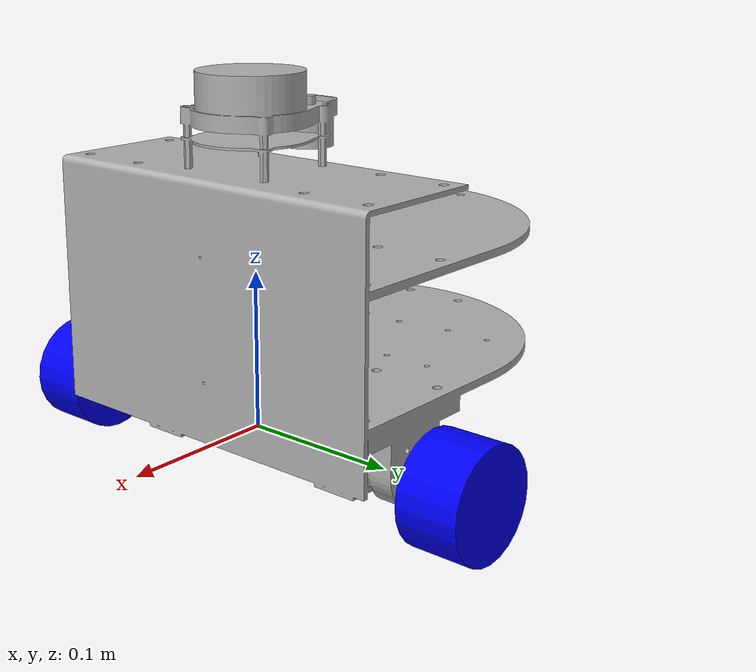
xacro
<?xml version="1.0" ?>
<robot name="ros" xmlns:xacro="http://www.ros.org/wiki/xacro">

<xacro:include filename="$(find robot)/urdf/materials.xacro" />
<xacro:include filename="$(find robot)/urdf/properties.xacro" />

<link name="base_footprint">

</link>

<joint name="footprint_joint" type="fixed">
  <child link="base_footprint"/>
  <parent link="base_link"/>
  <origin xyz="0.0 0.0 -0.035" rpy="0.0 0.0 0.0"/>
</joint>

<link name="base_link">
  <inertial>
    <origin xyz="-0.028662948158421374 -9.161384338691405e-07 0.07830072749629308" rpy="0 0 0"/>
    <mass value="1.4490433383590837"/>
    <inertia ixx="0.013382" iyy="0.012" izz="0.01271" ixy="-0.0" iyz="-0.0" ixz="-0.000167"/>
  </inertial>
  <visual>
    <origin xyz="0 0 0" rpy="0 0 0"/>
    <geometry>
      <mesh filename="file://$(find robot)/meshes/base_link.stl" scale="0.001 0.001 0.001"/>
    </geometry>
    <material name="plastic_glossy_grey"/>
  </visual>
  <collision>
    <origin xyz="0 0 0" rpy="0 0 0"/>
    <geometry>
      <mesh filename="file://$(find robot)/meshes/base_link.stl" scale="0.001 0.001 0.001"/>
    </geometry>
  </collision>
</link>

<xacro:property name="wheel_radius" value="0.035"/>
<xacro:property name="wheel_thickness" value="0.04"/>
<xacro:property name="wheel_mass" value="1.0"/>
<xacro:property name="wheel_offset_y" value="0.155"/>

<link name="left_wheel">
    <visual>
        <geometry>
            <cylinder radius="${wheel_radius}" length="${wheel_thickness}"/>
        </geometry>
        <material name="blue"/>
        <origin xyz="0 0 0" rpy="0 0 0"/>
    </visual>
    <collision>
        <geometry>
            <sphere radius="${wheel_radius}"/>
        </geometry>
    </collision>
    <xacro:inertial_cylinder mass="${wheel_mass}" length="${wheel_thickness}" radius="${wheel_radius}">
        <origin xyz="0 0 0" rpy="0 0 0"/>
    </xacro:inertial_cylinder>
</link>

<link name="right_wheel">
    <visual>
        <geometry>
            <cylinder radius="${wheel_radius}" length="${wheel_thickness}"/>
        </geometry>
        <material name="blue"/>
    </visual>
    <collision>
        <geometry>
            <sphere radius="${wheel_radius}"/>
        </geometry>
    </collision>
    <xacro:inertial_cylinder mass="${wheel_mass}" length="${wheel_thickness}" radius="${wheel_radius}">
        <origin xyz="0 0 0" rpy="0 0 0"/>
    </xacro:inertial_cylinder>
</link>

<!-- counter weight is invisible -->
<link name="counter_weight">
    <collision>
        <geometry>
            <box size="0.03 0.04 0.05"/>
        </geometry>
    </collision>
    <xacro:inertial_box mass="1.0" x="0.03" y="0.04" z="0.05">
      <origin xyz="${0.03/2} 0 ${0.05/2}" rpy="0 0 0"/>
    </xacro:inertial_box>
</link>

<joint name="left_wheel_joint" type="continuous">
    <parent link="base_link"/>
    <child link="left_wheel"/>
    <origin xyz="0 ${wheel_offset_y} 0" rpy="-${pi/2} 0 0" />
    <axis xyz="0 0 1"/>
</joint>

<joint name="right_wheel_joint" type="continuous">
    <parent link="base_link"/>
    <child link="right_wheel"/>
    <origin xyz="0 ${-wheel_offset_y} 0" rpy="${pi/2} 0 0" />
    <axis xyz="0 0 -1"/>
</joint>

<joint name="counter_joint" type="fixed">
  <origin xyz="-0.17 0.0 0.071" rpy="0.0 0.0 0.0"/>
  <parent link="base_link"/>
  <child link="counter_weight"/>
</joint>

</robot>

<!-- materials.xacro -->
<robot xmlns:xacro="http://www.ros.org/wiki/xacro" >

<material name="silver_default">
  <color rgba="0.700 0.700 0.700 1.000"/>
</material>

<material name="rubber_soft">
  <color rgba="0.15294117647058825 0.15294117647058825 0.15294117647058825 1.0"/>
</material>

<material name="plastic_glossy_grey">
  <color rgba="0.7019607843137254 0.7019607843137254 0.7019607843137254 1.0"/>
</material>

<material name="silver">
  <color rgba="0.700 0.700 0.700 1.000"/>
</material>

<material name="black">
  <color rgba="0 0 0 1"/>
</material>

<material name="white">
  <color rgba="1 1 1 1"/>
</material>

<material name="red">
  <color rgba="1 0 0 1"/>
</material>

<material name="green">
  <color rgba="0 1 0 1"/>
</material>

<material name="blue">
  <color rgba="0 0 1 1"/>
</material>

</robot>

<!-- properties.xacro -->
<robot name="ros" xmlns:xacro="http://www.ros.org/wiki/xacro" >

<xacro:property name="body_color" value="Gazebo/Grey" />

<gazebo reference="base_link">
  <material>${body_color}</material>
</gazebo>

<gazebo reference="left_wheel_1">
  <material>${body_color}</material>
  <mu1>0.2</mu1>
  <mu2>0.2</mu2>
</gazebo>

<gazebo reference="right_wheel_1">
  <material>${body_color}</material>
  <mu1>0.2</mu1>
  <mu2>0.2</mu2>
</gazebo>

<gazebo reference="laser_frame">
  <material>Gazebo/Black</material>
</gazebo>

</robot>
